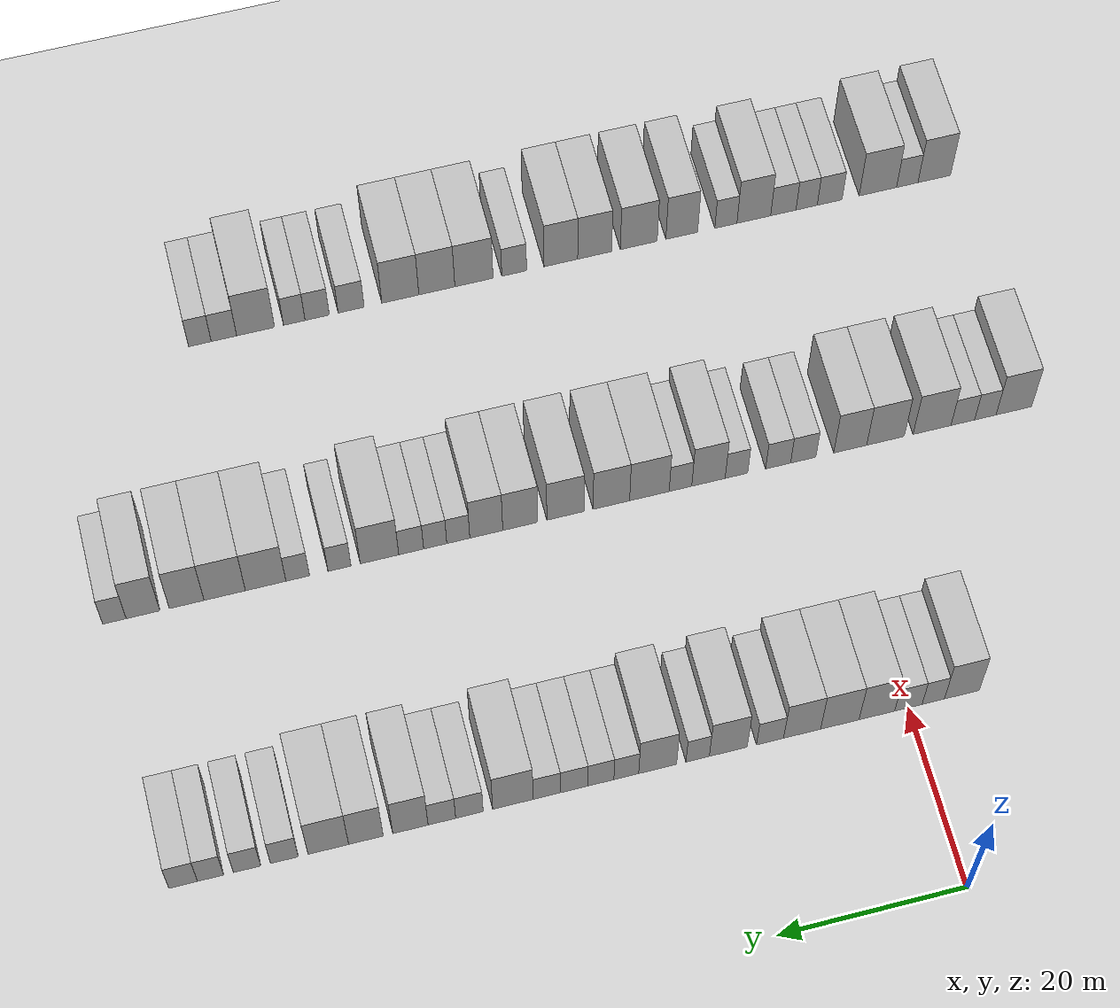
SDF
<sdf version="1.6">
 <world name="default">
  <include><name>ground_plane_1</name><uri>model://HANNAS_ground_plane</uri></include>
  <model name="building_111">
   <static>1</static>
   <pose>25.0000 -5.7930 0 0.000000 0.000000 0.000000</pose>
   <link name="link">
    <pose>0 0 4.50 0 0 0</pose>
    <collision name="collision"><geometry><box><size>10.0000 3.7998 9.0000</size></box></geometry></collision>
    <visual name="visual">
     <cast_shadows>0</cast_shadows>
     <geometry><box><size>10.0000 3.7998 9.0000</size></box></geometry>
     <material>
      <script>
       <uri>model://HANNAS_wall/materials/scripts</uri>
       <uri>model://HANNAS_wall/materials/textures</uri>
       <name>vrc/HANNAS_wall</name>
      </script>
     </material>
    </visual>
   </link>
  </model>
  <model name="building_112">
   <static>1</static>
   <pose>25.0000 -2.6859 0 0.000000 0.000000 0.000000</pose>
   <link name="link">
    <pose>0 0 3.00 0 0 0</pose>
    <collision name="collision"><geometry><box><size>10.0000 2.4144 6.0000</size></box></geometry></collision>
    <visual name="visual">
     <cast_shadows>0</cast_shadows>
     <geometry><box><size>10.0000 2.4144 6.0000</size></box></geometry>
     <material>
      <script>
       <uri>model://HANNAS_wall/materials/scripts</uri>
       <uri>model://HANNAS_wall/materials/textures</uri>
       <name>vrc/HANNAS_wall</name>
      </script>
     </material>
    </visual>
   </link>
  </model>
  <model name="building_113">
   <static>1</static>
   <pose>25.0000 0.0095 0 0.000000 0.000000 0.000000</pose>
   <link name="link">
    <pose>0 0 3.00 0 0 0</pose>
    <collision name="collision"><geometry><box><size>10.0000 2.9764 6.0000</size></box></geometry></collision>
    <visual name="visual">
     <cast_shadows>0</cast_shadows>
     <geometry><box><size>10.0000 2.9764 6.0000</size></box></geometry>
     <material>
      <script>
       <uri>model://HANNAS_wall/materials/scripts</uri>
       <uri>model://HANNAS_wall/materials/textures</uri>
       <name>vrc/HANNAS_wall</name>
      </script>
     </material>
    </visual>
   </link>
  </model>
  <model name="building_114">
   <static>1</static>
   <pose>25.0000 3.4234 0 0.000000 0.000000 0.000000</pose>
   <link name="link">
    <pose>0 0 4.50 0 0 0</pose>
    <collision name="collision"><geometry><box><size>10.0000 3.8512 9.0000</size></box></geometry></collision>
    <visual name="visual">
     <cast_shadows>0</cast_shadows>
     <geometry><box><size>10.0000 3.8512 9.0000</size></box></geometry>
     <material>
      <script>
       <uri>model://HANNAS_wall/materials/scripts</uri>
       <uri>model://HANNAS_wall/materials/textures</uri>
       <name>vrc/HANNAS_wall</name>
      </script>
     </material>
    </visual>
   </link>
  </model>
  <model name="building_115">
   <static>1</static>
   <pose>25.0000 7.4225 0 0.000000 0.000000 0.000000</pose>
   <link name="link">
    <pose>0 0 4.50 0 0 0</pose>
    <collision name="collision"><geometry><box><size>10.0000 4.1470 9.0000</size></box></geometry></collision>
    <visual name="visual">
     <cast_shadows>0</cast_shadows>
     <geometry><box><size>10.0000 4.1470 9.0000</size></box></geometry>
     <material>
      <script>
       <uri>model://HANNAS_wall/materials/scripts</uri>
       <uri>model://HANNAS_wall/materials/textures</uri>
       <name>vrc/HANNAS_wall</name>
      </script>
     </material>
    </visual>
   </link>
  </model>
  <model name="building_116">
   <static>1</static>
   <pose>25.0000 11.4840 0 0.000000 0.000000 0.000000</pose>
   <link name="link">
    <pose>0 0 4.50 0 0 0</pose>
    <collision name="collision"><geometry><box><size>10.0000 3.9761 9.0000</size></box></geometry></collision>
    <visual name="visual">
     <cast_shadows>0</cast_shadows>
     <geometry><box><size>10.0000 3.9761 9.0000</size></box></geometry>
     <material>
      <script>
       <uri>model://HANNAS_wall/materials/scripts</uri>
       <uri>model://HANNAS_wall/materials/textures</uri>
       <name>vrc/HANNAS_wall</name>
      </script>
     </material>
    </visual>
   </link>
  </model>
  <model name="building_117">
   <static>1</static>
   <pose>25.0000 14.9272 0 0.000000 0.000000 0.000000</pose>
   <link name="link">
    <pose>0 0 3.00 0 0 0</pose>
    <collision name="collision"><geometry><box><size>10.0000 2.9101 6.0000</size></box></geometry></collision>
    <visual name="visual">
     <cast_shadows>0</cast_shadows>
     <geometry><box><size>10.0000 2.9101 6.0000</size></box></geometry>
     <material>
      <script>
       <uri>model://HANNAS_wall/materials/scripts</uri>
       <uri>model://HANNAS_wall/materials/textures</uri>
       <name>vrc/HANNAS_wall</name>
      </script>
     </material>
    </visual>
   </link>
  </model>
  <model name="building_118">
   <static>1</static>
   <pose>25.0000 19.4033 0 0.000000 0.000000 0.000000</pose>
   <link name="link">
    <pose>0 0 4.50 0 0 0</pose>
    <collision name="collision"><geometry><box><size>10.0000 4.0421 9.0000</size></box></geometry></collision>
    <visual name="visual">
     <cast_shadows>0</cast_shadows>
     <geometry><box><size>10.0000 4.0421 9.0000</size></box></geometry>
     <material>
      <script>
       <uri>model://HANNAS_wall/materials/scripts</uri>
       <uri>model://HANNAS_wall/materials/textures</uri>
       <name>vrc/HANNAS_wall</name>
      </script>
     </material>
    </visual>
   </link>
  </model>
  <model name="building_119">
   <static>1</static>
   <pose>25.0000 22.6721 0 0.000000 0.000000 0.000000</pose>
   <link name="link">
    <pose>0 0 3.00 0 0 0</pose>
    <collision name="collision"><geometry><box><size>10.0000 2.4955 6.0000</size></box></geometry></collision>
    <visual name="visual">
     <cast_shadows>0</cast_shadows>
     <geometry><box><size>10.0000 2.4955 6.0000</size></box></geometry>
     <material>
      <script>
       <uri>model://HANNAS_wall/materials/scripts</uri>
       <uri>model://HANNAS_wall/materials/textures</uri>
       <name>vrc/HANNAS_wall</name>
      </script>
     </material>
    </visual>
   </link>
  </model>
  <model name="building_120">
   <static>1</static>
   <pose>25.0000 26.9314 0 0.000000 0.000000 0.000000</pose>
   <link name="link">
    <pose>0 0 4.50 0 0 0</pose>
    <collision name="collision"><geometry><box><size>10.0000 4.0230 9.0000</size></box></geometry></collision>
    <visual name="visual">
     <cast_shadows>0</cast_shadows>
     <geometry><box><size>10.0000 4.0230 9.0000</size></box></geometry>
     <material>
      <script>
       <uri>model://HANNAS_wall/materials/scripts</uri>
       <uri>model://HANNAS_wall/materials/textures</uri>
       <name>vrc/HANNAS_wall</name>
      </script>
     </material>
    </visual>
   </link>
  </model>
  <model name="building_121">
   <static>1</static>
   <pose>25.0000 30.2590 0 0.000000 0.000000 0.000000</pose>
   <link name="link">
    <pose>0 0 3.00 0 0 0</pose>
    <collision name="collision"><geometry><box><size>10.0000 2.6323 6.0000</size></box></geometry></collision>
    <visual name="visual">
     <cast_shadows>0</cast_shadows>
     <geometry><box><size>10.0000 2.6323 6.0000</size></box></geometry>
     <material>
      <script>
       <uri>model://HANNAS_wall/materials/scripts</uri>
       <uri>model://HANNAS_wall/materials/textures</uri>
       <name>vrc/HANNAS_wall</name>
      </script>
     </material>
    </visual>
   </link>
  </model>
  <model name="building_122">
   <static>1</static>
   <pose>25.0000 32.9532 0 0.000000 0.000000 0.000000</pose>
   <link name="link">
    <pose>0 0 3.00 0 0 0</pose>
    <collision name="collision"><geometry><box><size>10.0000 2.7561 6.0000</size></box></geometry></collision>
    <visual name="visual">
     <cast_shadows>0</cast_shadows>
     <geometry><box><size>10.0000 2.7561 6.0000</size></box></geometry>
     <material>
      <script>
       <uri>model://HANNAS_wall/materials/scripts</uri>
       <uri>model://HANNAS_wall/materials/textures</uri>
       <name>vrc/HANNAS_wall</name>
      </script>
     </material>
    </visual>
   </link>
  </model>
  <model name="building_123">
   <static>1</static>
   <pose>25.0000 35.7816 0 0.000000 0.000000 0.000000</pose>
   <link name="link">
    <pose>0 0 3.00 0 0 0</pose>
    <collision name="collision"><geometry><box><size>10.0000 2.9007 6.0000</size></box></geometry></collision>
    <visual name="visual">
     <cast_shadows>0</cast_shadows>
     <geometry><box><size>10.0000 2.9007 6.0000</size></box></geometry>
     <material>
      <script>
       <uri>model://HANNAS_wall/materials/scripts</uri>
       <uri>model://HANNAS_wall/materials/textures</uri>
       <name>vrc/HANNAS_wall</name>
      </script>
     </material>
    </visual>
   </link>
  </model>
  <model name="building_124">
   <static>1</static>
   <pose>25.0000 38.6720 0 0.000000 0.000000 0.000000</pose>
   <link name="link">
    <pose>0 0 3.00 0 0 0</pose>
    <collision name="collision"><geometry><box><size>10.0000 2.8801 6.0000</size></box></geometry></collision>
    <visual name="visual">
     <cast_shadows>0</cast_shadows>
     <geometry><box><size>10.0000 2.8801 6.0000</size></box></geometry>
     <material>
      <script>
       <uri>model://HANNAS_wall/materials/scripts</uri>
       <uri>model://HANNAS_wall/materials/textures</uri>
       <name>vrc/HANNAS_wall</name>
      </script>
     </material>
    </visual>
   </link>
  </model>
  <model name="building_125">
   <static>1</static>
   <pose>25.0000 42.2370 0 0.000000 0.000000 0.000000</pose>
   <link name="link">
    <pose>0 0 4.50 0 0 0</pose>
    <collision name="collision"><geometry><box><size>10.0000 4.2500 9.0000</size></box></geometry></collision>
    <visual name="visual">
     <cast_shadows>0</cast_shadows>
     <geometry><box><size>10.0000 4.2500 9.0000</size></box></geometry>
     <material>
      <script>
       <uri>model://HANNAS_wall/materials/scripts</uri>
       <uri>model://HANNAS_wall/materials/textures</uri>
       <name>vrc/HANNAS_wall</name>
      </script>
     </material>
    </visual>
   </link>
  </model>
  <model name="building_126">
   <static>1</static>
   <pose>25.0000 46.8047 0 0.000000 0.000000 0.000000</pose>
   <link name="link">
    <pose>0 0 3.00 0 0 0</pose>
    <collision name="collision"><geometry><box><size>10.0000 2.8853 6.0000</size></box></geometry></collision>
    <visual name="visual">
     <cast_shadows>0</cast_shadows>
     <geometry><box><size>10.0000 2.8853 6.0000</size></box></geometry>
     <material>
      <script>
       <uri>model://HANNAS_wall/materials/scripts</uri>
       <uri>model://HANNAS_wall/materials/textures</uri>
       <name>vrc/HANNAS_wall</name>
      </script>
     </material>
    </visual>
   </link>
  </model>
  <model name="building_127">
   <static>1</static>
   <pose>25.0000 49.6917 0 0.000000 0.000000 0.000000</pose>
   <link name="link">
    <pose>0 0 3.00 0 0 0</pose>
    <collision name="collision"><geometry><box><size>10.0000 2.8888 6.0000</size></box></geometry></collision>
    <visual name="visual">
     <cast_shadows>0</cast_shadows>
     <geometry><box><size>10.0000 2.8888 6.0000</size></box></geometry>
     <material>
      <script>
       <uri>model://HANNAS_wall/materials/scripts</uri>
       <uri>model://HANNAS_wall/materials/textures</uri>
       <name>vrc/HANNAS_wall</name>
      </script>
     </material>
    </visual>
   </link>
  </model>
  <model name="building_128">
   <static>1</static>
   <pose>25.0000 52.9776 0 0.000000 0.000000 0.000000</pose>
   <link name="link">
    <pose>0 0 4.50 0 0 0</pose>
    <collision name="collision"><geometry><box><size>10.0000 3.6829 9.0000</size></box></geometry></collision>
    <visual name="visual">
     <cast_shadows>0</cast_shadows>
     <geometry><box><size>10.0000 3.6829 9.0000</size></box></geometry>
     <material>
      <script>
       <uri>model://HANNAS_wall/materials/scripts</uri>
       <uri>model://HANNAS_wall/materials/textures</uri>
       <name>vrc/HANNAS_wall</name>
      </script>
     </material>
    </visual>
   </link>
  </model>
  <model name="building_129">
   <static>1</static>
   <pose>25.0000 57.6201 0 0.000000 0.000000 0.000000</pose>
   <link name="link">
    <pose>0 0 4.50 0 0 0</pose>
    <collision name="collision"><geometry><box><size>10.0000 3.6021 9.0000</size></box></geometry></collision>
    <visual name="visual">
     <cast_shadows>0</cast_shadows>
     <geometry><box><size>10.0000 3.6021 9.0000</size></box></geometry>
     <material>
      <script>
       <uri>model://HANNAS_wall/materials/scripts</uri>
       <uri>model://HANNAS_wall/materials/textures</uri>
       <name>vrc/HANNAS_wall</name>
      </script>
     </material>
    </visual>
   </link>
  </model>
  <model name="building_130">
   <static>1</static>
   <pose>25.0000 61.5335 0 0.000000 0.000000 0.000000</pose>
   <link name="link">
    <pose>0 0 4.50 0 0 0</pose>
    <collision name="collision"><geometry><box><size>10.0000 4.2247 9.0000</size></box></geometry></collision>
    <visual name="visual">
     <cast_shadows>0</cast_shadows>
     <geometry><box><size>10.0000 4.2247 9.0000</size></box></geometry>
     <material>
      <script>
       <uri>model://HANNAS_wall/materials/scripts</uri>
       <uri>model://HANNAS_wall/materials/textures</uri>
       <name>vrc/HANNAS_wall</name>
      </script>
     </material>
    </visual>
   </link>
  </model>
  <model name="building_131">
   <static>1</static>
   <pose>25.0000 66.0856 0 0.000000 0.000000 0.000000</pose>
   <link name="link">
    <pose>0 0 3.00 0 0 0</pose>
    <collision name="collision"><geometry><box><size>10.0000 2.8796 6.0000</size></box></geometry></collision>
    <visual name="visual">
     <cast_shadows>0</cast_shadows>
     <geometry><box><size>10.0000 2.8796 6.0000</size></box></geometry>
     <material>
      <script>
       <uri>model://HANNAS_wall/materials/scripts</uri>
       <uri>model://HANNAS_wall/materials/textures</uri>
       <name>vrc/HANNAS_wall</name>
      </script>
     </material>
    </visual>
   </link>
  </model>
  <model name="building_132">
   <static>1</static>
   <pose>25.0000 69.9453 0 0.000000 0.000000 0.000000</pose>
   <link name="link">
    <pose>0 0 3.00 0 0 0</pose>
    <collision name="collision"><geometry><box><size>10.0000 2.8400 6.0000</size></box></geometry></collision>
    <visual name="visual">
     <cast_shadows>0</cast_shadows>
     <geometry><box><size>10.0000 2.8400 6.0000</size></box></geometry>
     <material>
      <script>
       <uri>model://HANNAS_wall/materials/scripts</uri>
       <uri>model://HANNAS_wall/materials/textures</uri>
       <name>vrc/HANNAS_wall</name>
      </script>
     </material>
    </visual>
   </link>
  </model>
  <model name="building_133">
   <static>1</static>
   <pose>25.0000 73.7097 0 0.000000 0.000000 0.000000</pose>
   <link name="link">
    <pose>0 0 3.00 0 0 0</pose>
    <collision name="collision"><geometry><box><size>10.0000 2.6888 6.0000</size></box></geometry></collision>
    <visual name="visual">
     <cast_shadows>0</cast_shadows>
     <geometry><box><size>10.0000 2.6888 6.0000</size></box></geometry>
     <material>
      <script>
       <uri>model://HANNAS_wall/materials/scripts</uri>
       <uri>model://HANNAS_wall/materials/textures</uri>
       <name>vrc/HANNAS_wall</name>
      </script>
     </material>
    </visual>
   </link>
  </model>
  <model name="building_134">
   <static>1</static>
   <pose>25.0000 76.5297 0 0.000000 0.000000 0.000000</pose>
   <link name="link">
    <pose>0 0 3.00 0 0 0</pose>
    <collision name="collision"><geometry><box><size>10.0000 2.9512 6.0000</size></box></geometry></collision>
    <visual name="visual">
     <cast_shadows>0</cast_shadows>
     <geometry><box><size>10.0000 2.9512 6.0000</size></box></geometry>
     <material>
      <script>
       <uri>model://HANNAS_wall/materials/scripts</uri>
       <uri>model://HANNAS_wall/materials/textures</uri>
       <name>vrc/HANNAS_wall</name>
      </script>
     </material>
    </visual>
   </link>
  </model>
  <model name="building_346">
   <static>1</static>
   <pose>55.0000 -21.2539 0 0.000000 0.000000 0.000000</pose>
   <link name="link">
    <pose>0 0 4.50 0 0 0</pose>
    <collision name="collision"><geometry><box><size>10.0000 4.0521 9.0000</size></box></geometry></collision>
    <visual name="visual">
     <cast_shadows>0</cast_shadows>
     <geometry><box><size>10.0000 4.0521 9.0000</size></box></geometry>
     <material>
      <script>
       <uri>model://HANNAS_wall/materials/scripts</uri>
       <uri>model://HANNAS_wall/materials/textures</uri>
       <name>vrc/HANNAS_wall</name>
      </script>
     </material>
    </visual>
   </link>
  </model>
  <model name="building_347">
   <static>1</static>
   <pose>55.0000 -18.0122 0 0.000000 0.000000 0.000000</pose>
   <link name="link">
    <pose>0 0 3.00 0 0 0</pose>
    <collision name="collision"><geometry><box><size>10.0000 2.4312 6.0000</size></box></geometry></collision>
    <visual name="visual">
     <cast_shadows>0</cast_shadows>
     <geometry><box><size>10.0000 2.4312 6.0000</size></box></geometry>
     <material>
      <script>
       <uri>model://HANNAS_wall/materials/scripts</uri>
       <uri>model://HANNAS_wall/materials/textures</uri>
       <name>vrc/HANNAS_wall</name>
      </script>
     </material>
    </visual>
   </link>
  </model>
  <model name="building_348">
   <static>1</static>
   <pose>55.0000 -15.4551 0 0.000000 0.000000 0.000000</pose>
   <link name="link">
    <pose>0 0 3.00 0 0 0</pose>
    <collision name="collision"><geometry><box><size>10.0000 2.6830 6.0000</size></box></geometry></collision>
    <visual name="visual">
     <cast_shadows>0</cast_shadows>
     <geometry><box><size>10.0000 2.6830 6.0000</size></box></geometry>
     <material>
      <script>
       <uri>model://HANNAS_wall/materials/scripts</uri>
       <uri>model://HANNAS_wall/materials/textures</uri>
       <name>vrc/HANNAS_wall</name>
      </script>
     </material>
    </visual>
   </link>
  </model>
  <model name="building_349">
   <static>1</static>
   <pose>55.0000 -11.9667 0 0.000000 0.000000 0.000000</pose>
   <link name="link">
    <pose>0 0 4.50 0 0 0</pose>
    <collision name="collision"><geometry><box><size>10.0000 4.2938 9.0000</size></box></geometry></collision>
    <visual name="visual">
     <cast_shadows>0</cast_shadows>
     <geometry><box><size>10.0000 4.2938 9.0000</size></box></geometry>
     <material>
      <script>
       <uri>model://HANNAS_wall/materials/scripts</uri>
       <uri>model://HANNAS_wall/materials/textures</uri>
       <name>vrc/HANNAS_wall</name>
      </script>
     </material>
    </visual>
   </link>
  </model>
  <model name="building_350">
   <static>1</static>
   <pose>55.0000 -6.7031 0 0.000000 0.000000 0.000000</pose>
   <link name="link">
    <pose>0 0 4.50 0 0 0</pose>
    <collision name="collision"><geometry><box><size>10.0000 4.2333 9.0000</size></box></geometry></collision>
    <visual name="visual">
     <cast_shadows>0</cast_shadows>
     <geometry><box><size>10.0000 4.2333 9.0000</size></box></geometry>
     <material>
      <script>
       <uri>model://HANNAS_wall/materials/scripts</uri>
       <uri>model://HANNAS_wall/materials/textures</uri>
       <name>vrc/HANNAS_wall</name>
      </script>
     </material>
    </visual>
   </link>
  </model>
  <model name="building_351">
   <static>1</static>
   <pose>55.0000 -2.7287 0 0.000000 0.000000 0.000000</pose>
   <link name="link">
    <pose>0 0 4.50 0 0 0</pose>
    <collision name="collision"><geometry><box><size>10.0000 3.7155 9.0000</size></box></geometry></collision>
    <visual name="visual">
     <cast_shadows>0</cast_shadows>
     <geometry><box><size>10.0000 3.7155 9.0000</size></box></geometry>
     <material>
      <script>
       <uri>model://HANNAS_wall/materials/scripts</uri>
       <uri>model://HANNAS_wall/materials/textures</uri>
       <name>vrc/HANNAS_wall</name>
      </script>
     </material>
    </visual>
   </link>
  </model>
  <model name="building_352">
   <static>1</static>
   <pose>55.0000 2.5466 0 0.000000 0.000000 0.000000</pose>
   <link name="link">
    <pose>0 0 3.00 0 0 0</pose>
    <collision name="collision"><geometry><box><size>10.0000 2.8353 6.0000</size></box></geometry></collision>
    <visual name="visual">
     <cast_shadows>0</cast_shadows>
     <geometry><box><size>10.0000 2.8353 6.0000</size></box></geometry>
     <material>
      <script>
       <uri>model://HANNAS_wall/materials/scripts</uri>
       <uri>model://HANNAS_wall/materials/textures</uri>
       <name>vrc/HANNAS_wall</name>
      </script>
     </material>
    </visual>
   </link>
  </model>
  <model name="building_353">
   <static>1</static>
   <pose>55.0000 5.3639 0 0.000000 0.000000 0.000000</pose>
   <link name="link">
    <pose>0 0 3.00 0 0 0</pose>
    <collision name="collision"><geometry><box><size>10.0000 2.7992 6.0000</size></box></geometry></collision>
    <visual name="visual">
     <cast_shadows>0</cast_shadows>
     <geometry><box><size>10.0000 2.7992 6.0000</size></box></geometry>
     <material>
      <script>
       <uri>model://HANNAS_wall/materials/scripts</uri>
       <uri>model://HANNAS_wall/materials/textures</uri>
       <name>vrc/HANNAS_wall</name>
      </script>
     </material>
    </visual>
   </link>
  </model>
  <model name="building_354">
   <static>1</static>
   <pose>55.0000 10.0194 0 0.000000 0.000000 0.000000</pose>
   <link name="link">
    <pose>0 0 3.00 0 0 0</pose>
    <collision name="collision"><geometry><box><size>10.0000 2.5119 6.0000</size></box></geometry></collision>
    <visual name="visual">
     <cast_shadows>0</cast_shadows>
     <geometry><box><size>10.0000 2.5119 6.0000</size></box></geometry>
     <material>
      <script>
       <uri>model://HANNAS_wall/materials/scripts</uri>
       <uri>model://HANNAS_wall/materials/textures</uri>
       <name>vrc/HANNAS_wall</name>
      </script>
     </material>
    </visual>
   </link>
  </model>
  <model name="building_355">
   <static>1</static>
   <pose>55.0000 13.1345 0 0.000000 0.000000 0.000000</pose>
   <link name="link">
    <pose>0 0 4.50 0 0 0</pose>
    <collision name="collision"><geometry><box><size>10.0000 3.7183 9.0000</size></box></geometry></collision>
    <visual name="visual">
     <cast_shadows>0</cast_shadows>
     <geometry><box><size>10.0000 3.7183 9.0000</size></box></geometry>
     <material>
      <script>
       <uri>model://HANNAS_wall/materials/scripts</uri>
       <uri>model://HANNAS_wall/materials/textures</uri>
       <name>vrc/HANNAS_wall</name>
      </script>
     </material>
    </visual>
   </link>
  </model>
  <model name="building_356">
   <static>1</static>
   <pose>55.0000 16.2499 0 0.000000 0.000000 0.000000</pose>
   <link name="link">
    <pose>0 0 3.00 0 0 0</pose>
    <collision name="collision"><geometry><box><size>10.0000 2.5124 6.0000</size></box></geometry></collision>
    <visual name="visual">
     <cast_shadows>0</cast_shadows>
     <geometry><box><size>10.0000 2.5124 6.0000</size></box></geometry>
     <material>
      <script>
       <uri>model://HANNAS_wall/materials/scripts</uri>
       <uri>model://HANNAS_wall/materials/textures</uri>
       <name>vrc/HANNAS_wall</name>
      </script>
     </material>
    </visual>
   </link>
  </model>
  <model name="building_357">
   <static>1</static>
   <pose>55.0000 19.6986 0 0.000000 0.000000 0.000000</pose>
   <link name="link">
    <pose>0 0 4.50 0 0 0</pose>
    <collision name="collision"><geometry><box><size>10.0000 4.3850 9.0000</size></box></geometry></collision>
    <visual name="visual">
     <cast_shadows>0</cast_shadows>
     <geometry><box><size>10.0000 4.3850 9.0000</size></box></geometry>
     <material>
      <script>
       <uri>model://HANNAS_wall/materials/scripts</uri>
       <uri>model://HANNAS_wall/materials/textures</uri>
       <name>vrc/HANNAS_wall</name>
      </script>
     </material>
    </visual>
   </link>
  </model>
  <model name="building_358">
   <static>1</static>
   <pose>55.0000 23.9132 0 0.000000 0.000000 0.000000</pose>
   <link name="link">
    <pose>0 0 4.50 0 0 0</pose>
    <collision name="collision"><geometry><box><size>10.0000 4.0441 9.0000</size></box></geometry></collision>
    <visual name="visual">
     <cast_shadows>0</cast_shadows>
     <geometry><box><size>10.0000 4.0441 9.0000</size></box></geometry>
     <material>
      <script>
       <uri>model://HANNAS_wall/materials/scripts</uri>
       <uri>model://HANNAS_wall/materials/textures</uri>
       <name>vrc/HANNAS_wall</name>
      </script>
     </material>
    </visual>
   </link>
  </model>
  <model name="building_359">
   <static>1</static>
   <pose>55.0000 28.9796 0 0.000000 0.000000 0.000000</pose>
   <link name="link">
    <pose>0 0 4.50 0 0 0</pose>
    <collision name="collision"><geometry><box><size>10.0000 4.0888 9.0000</size></box></geometry></collision>
    <visual name="visual">
     <cast_shadows>0</cast_shadows>
     <geometry><box><size>10.0000 4.0888 9.0000</size></box></geometry>
     <material>
      <script>
       <uri>model://HANNAS_wall/materials/scripts</uri>
       <uri>model://HANNAS_wall/materials/textures</uri>
       <name>vrc/HANNAS_wall</name>
      </script>
     </material>
    </visual>
   </link>
  </model>
  <model name="building_360">
   <static>1</static>
   <pose>55.0000 33.9453 0 0.000000 0.000000 0.000000</pose>
   <link name="link">
    <pose>0 0 4.50 0 0 0</pose>
    <collision name="collision"><geometry><box><size>10.0000 3.8426 9.0000</size></box></geometry></collision>
    <visual name="visual">
     <cast_shadows>0</cast_shadows>
     <geometry><box><size>10.0000 3.8426 9.0000</size></box></geometry>
     <material>
      <script>
       <uri>model://HANNAS_wall/materials/scripts</uri>
       <uri>model://HANNAS_wall/materials/textures</uri>
       <name>vrc/HANNAS_wall</name>
      </script>
     </material>
    </visual>
   </link>
  </model>
  <model name="building_361">
   <static>1</static>
   <pose>55.0000 37.6709 0 0.000000 0.000000 0.000000</pose>
   <link name="link">
    <pose>0 0 4.50 0 0 0</pose>
    <collision name="collision"><geometry><box><size>10.0000 3.6086 9.0000</size></box></geometry></collision>
    <visual name="visual">
     <cast_shadows>0</cast_shadows>
     <geometry><box><size>10.0000 3.6086 9.0000</size></box></geometry>
     <material>
      <script>
       <uri>model://HANNAS_wall/materials/scripts</uri>
       <uri>model://HANNAS_wall/materials/textures</uri>
       <name>vrc/HANNAS_wall</name>
      </script>
     </material>
    </visual>
   </link>
  </model>
  <model name="building_362">
   <static>1</static>
   <pose>55.0000 40.7345 0 0.000000 0.000000 0.000000</pose>
   <link name="link">
    <pose>0 0 3.00 0 0 0</pose>
    <collision name="collision"><geometry><box><size>10.0000 2.5184 6.0000</size></box></geometry></collision>
    <visual name="visual">
     <cast_shadows>0</cast_shadows>
     <geometry><box><size>10.0000 2.5184 6.0000</size></box></geometry>
     <material>
      <script>
       <uri>model://HANNAS_wall/materials/scripts</uri>
       <uri>model://HANNAS_wall/materials/textures</uri>
       <name>vrc/HANNAS_wall</name>
      </script>
     </material>
    </visual>
   </link>
  </model>
  <model name="building_363">
   <static>1</static>
   <pose>55.0000 43.2559 0 0.000000 0.000000 0.000000</pose>
   <link name="link">
    <pose>0 0 3.00 0 0 0</pose>
    <collision name="collision"><geometry><box><size>10.0000 2.5244 6.0000</size></box></geometry></collision>
    <visual name="visual">
     <cast_shadows>0</cast_shadows>
     <geometry><box><size>10.0000 2.5244 6.0000</size></box></geometry>
     <material>
      <script>
       <uri>model://HANNAS_wall/materials/scripts</uri>
       <uri>model://HANNAS_wall/materials/textures</uri>
       <name>vrc/HANNAS_wall</name>
      </script>
     </material>
    </visual>
   </link>
  </model>
  <model name="building_364">
   <static>1</static>
   <pose>55.0000 45.8734 0 0.000000 0.000000 0.000000</pose>
   <link name="link">
    <pose>0 0 3.00 0 0 0</pose>
    <collision name="collision"><geometry><box><size>10.0000 2.7105 6.0000</size></box></geometry></collision>
    <visual name="visual">
     <cast_shadows>0</cast_shadows>
     <geometry><box><size>10.0000 2.7105 6.0000</size></box></geometry>
     <material>
      <script>
       <uri>model://HANNAS_wall/materials/scripts</uri>
       <uri>model://HANNAS_wall/materials/textures</uri>
       <name>vrc/HANNAS_wall</name>
      </script>
     </material>
    </visual>
   </link>
  </model>
  <model name="building_365">
   <static>1</static>
   <pose>55.0000 49.3207 0 0.000000 0.000000 0.000000</pose>
   <link name="link">
    <pose>0 0 4.50 0 0 0</pose>
    <collision name="collision"><geometry><box><size>10.0000 4.1843 9.0000</size></box></geometry></collision>
    <visual name="visual">
     <cast_shadows>0</cast_shadows>
     <geometry><box><size>10.0000 4.1843 9.0000</size></box></geometry>
     <material>
      <script>
       <uri>model://HANNAS_wall/materials/scripts</uri>
       <uri>model://HANNAS_wall/materials/textures</uri>
       <name>vrc/HANNAS_wall</name>
      </script>
     </material>
    </visual>
   </link>
  </model>
  <model name="building_366">
   <static>1</static>
   <pose>55.0000 53.6635 0 0.000000 0.000000 0.000000</pose>
   <link name="link">
    <pose>0 0 3.00 0 0 0</pose>
    <collision name="collision"><geometry><box><size>10.0000 2.5012 6.0000</size></box></geometry></collision>
    <visual name="visual">
     <cast_shadows>0</cast_shadows>
     <geometry><box><size>10.0000 2.5012 6.0000</size></box></geometry>
     <material>
      <script>
       <uri>model://HANNAS_wall/materials/scripts</uri>
       <uri>model://HANNAS_wall/materials/textures</uri>
       <name>vrc/HANNAS_wall</name>
      </script>
     </material>
    </visual>
   </link>
  </model>
  <model name="building_367">
   <static>1</static>
   <pose>55.0000 58.1878 0 0.000000 0.000000 0.000000</pose>
   <link name="link">
    <pose>0 0 3.00 0 0 0</pose>
    <collision name="collision"><geometry><box><size>10.0000 2.5474 6.0000</size></box></geometry></collision>
    <visual name="visual">
     <cast_shadows>0</cast_shadows>
     <geometry><box><size>10.0000 2.5474 6.0000</size></box></geometry>
     <material>
      <script>
       <uri>model://HANNAS_wall/materials/scripts</uri>
       <uri>model://HANNAS_wall/materials/textures</uri>
       <name>vrc/HANNAS_wall</name>
      </script>
     </material>
    </visual>
   </link>
  </model>
  <model name="building_368">
   <static>1</static>
   <pose>55.0000 61.6407 0 0.000000 0.000000 0.000000</pose>
   <link name="link">
    <pose>0 0 4.50 0 0 0</pose>
    <collision name="collision"><geometry><box><size>10.0000 4.3584 9.0000</size></box></geometry></collision>
    <visual name="visual">
     <cast_shadows>0</cast_shadows>
     <geometry><box><size>10.0000 4.3584 9.0000</size></box></geometry>
     <material>
      <script>
       <uri>model://HANNAS_wall/materials/scripts</uri>
       <uri>model://HANNAS_wall/materials/textures</uri>
       <name>vrc/HANNAS_wall</name>
      </script>
     </material>
    </visual>
   </link>
  </model>
  <model name="building_369">
   <static>1</static>
   <pose>55.0000 66.0492 0 0.000000 0.000000 0.000000</pose>
   <link name="link">
    <pose>0 0 4.50 0 0 0</pose>
    <collision name="collision"><geometry><box><size>10.0000 4.4586 9.0000</size></box></geometry></collision>
    <visual name="visual">
     <cast_shadows>0</cast_shadows>
     <geometry><box><size>10.0000 4.4586 9.0000</size></box></geometry>
     <material>
      <script>
       <uri>model://HANNAS_wall/materials/scripts</uri>
       <uri>model://HANNAS_wall/materials/textures</uri>
       <name>vrc/HANNAS_wall</name>
      </script>
     </material>
    </visual>
   </link>
  </model>
  <model name="building_370">
   <static>1</static>
   <pose>55.0000 70.1416 0 0.000000 0.000000 0.000000</pose>
   <link name="link">
    <pose>0 0 4.50 0 0 0</pose>
    <collision name="collision"><geometry><box><size>10.0000 3.7263 9.0000</size></box></geometry></collision>
    <visual name="visual">
     <cast_shadows>0</cast_shadows>
     <geometry><box><size>10.0000 3.7263 9.0000</size></box></geometry>
     <material>
      <script>
       <uri>model://HANNAS_wall/materials/scripts</uri>
       <uri>model://HANNAS_wall/materials/textures</uri>
       <name>vrc/HANNAS_wall</name>
      </script>
     </material>
    </visual>
   </link>
  </model>
  <model name="building_371">
   <static>1</static>
   <pose>55.0000 74.8085 0 0.000000 0.000000 0.000000</pose>
   <link name="link">
    <pose>0 0 4.50 0 0 0</pose>
    <collision name="collision"><geometry><box><size>10.0000 3.6076 9.0000</size></box></geometry></collision>
    <visual name="visual">
     <cast_shadows>0</cast_shadows>
     <geometry><box><size>10.0000 3.6076 9.0000</size></box></geometry>
     <material>
      <script>
       <uri>model://HANNAS_wall/materials/scripts</uri>
       <uri>model://HANNAS_wall/materials/textures</uri>
       <name>vrc/HANNAS_wall</name>
      </script>
     </material>
    </visual>
   </link>
  </model>
  <model name="building_372">
   <static>1</static>
   <pose>55.0000 77.8617 0 0.000000 0.000000 0.000000</pose>
   <link name="link">
    <pose>0 0 3.00 0 0 0</pose>
    <collision name="collision"><geometry><box><size>10.0000 2.4987 6.0000</size></box></geometry></collision>
    <visual name="visual">
     <cast_shadows>0</cast_shadows>
     <geometry><box><size>10.0000 2.4987 6.0000</size></box></geometry>
     <material>
      <script>
       <uri>model://HANNAS_wall/materials/scripts</uri>
       <uri>model://HANNAS_wall/materials/textures</uri>
       <name>vrc/HANNAS_wall</name>
      </script>
     </material>
    </visual>
   </link>
  </model>
  <model name="building_572">
   <static>1</static>
   <pose>85.0000 -21.6380 0 0.000000 0.000000 0.000000</pose>
   <link name="link">
    <pose>0 0 4.50 0 0 0</pose>
    <collision name="collision"><geometry><box><size>10.0000 3.8410 9.0000</size></box></geometry></collision>
    <visual name="visual">
     <cast_shadows>0</cast_shadows>
     <geometry><box><size>10.0000 3.8410 9.0000</size></box></geometry>
     <material>
      <script>
       <uri>model://HANNAS_wall/materials/scripts</uri>
       <uri>model://HANNAS_wall/materials/textures</uri>
       <name>vrc/HANNAS_wall</name>
      </script>
     </material>
    </visual>
   </link>
  </model>
  <model name="building_573">
   <static>1</static>
   <pose>85.0000 -18.4551 0 0.000000 0.000000 0.000000</pose>
   <link name="link">
    <pose>0 0 3.00 0 0 0</pose>
    <collision name="collision"><geometry><box><size>10.0000 2.5247 6.0000</size></box></geometry></collision>
    <visual name="visual">
     <cast_shadows>0</cast_shadows>
     <geometry><box><size>10.0000 2.5247 6.0000</size></box></geometry>
     <material>
      <script>
       <uri>model://HANNAS_wall/materials/scripts</uri>
       <uri>model://HANNAS_wall/materials/textures</uri>
       <name>vrc/HANNAS_wall</name>
      </script>
     </material>
    </visual>
   </link>
  </model>
  <model name="building_574">
   <static>1</static>
   <pose>85.0000 -14.9993 0 0.000000 0.000000 0.000000</pose>
   <link name="link">
    <pose>0 0 4.50 0 0 0</pose>
    <collision name="collision"><geometry><box><size>10.0000 4.3869 9.0000</size></box></geometry></collision>
    <visual name="visual">
     <cast_shadows>0</cast_shadows>
     <geometry><box><size>10.0000 4.3869 9.0000</size></box></geometry>
     <material>
      <script>
       <uri>model://HANNAS_wall/materials/scripts</uri>
       <uri>model://HANNAS_wall/materials/textures</uri>
       <name>vrc/HANNAS_wall</name>
      </script>
     </material>
    </visual>
   </link>
  </model>
  <model name="building_575">
   <static>1</static>
   <pose>85.0000 -9.3564 0 0.000000 0.000000 0.000000</pose>
   <link name="link">
    <pose>0 0 3.00 0 0 0</pose>
    <collision name="collision"><geometry><box><size>10.0000 2.8989 6.0000</size></box></geometry></collision>
    <visual name="visual">
     <cast_shadows>0</cast_shadows>
     <geometry><box><size>10.0000 2.8989 6.0000</size></box></geometry>
     <material>
      <script>
       <uri>model://HANNAS_wall/materials/scripts</uri>
       <uri>model://HANNAS_wall/materials/textures</uri>
       <name>vrc/HANNAS_wall</name>
      </script>
     </material>
    </visual>
   </link>
  </model>
  <model name="building_576">
   <static>1</static>
   <pose>85.0000 -6.6656 0 0.000000 0.000000 0.000000</pose>
   <link name="link">
    <pose>0 0 3.00 0 0 0</pose>
    <collision name="collision"><geometry><box><size>10.0000 2.4825 6.0000</size></box></geometry></collision>
    <visual name="visual">
     <cast_shadows>0</cast_shadows>
     <geometry><box><size>10.0000 2.4825 6.0000</size></box></geometry>
     <material>
      <script>
       <uri>model://HANNAS_wall/materials/scripts</uri>
       <uri>model://HANNAS_wall/materials/textures</uri>
       <name>vrc/HANNAS_wall</name>
      </script>
     </material>
    </visual>
   </link>
  </model>
  <model name="building_577">
   <static>1</static>
   <pose>85.0000 -3.9434 0 0.000000 0.000000 0.000000</pose>
   <link name="link">
    <pose>0 0 3.00 0 0 0</pose>
    <collision name="collision"><geometry><box><size>10.0000 2.9620 6.0000</size></box></geometry></collision>
    <visual name="visual">
     <cast_shadows>0</cast_shadows>
     <geometry><box><size>10.0000 2.9620 6.0000</size></box></geometry>
     <material>
      <script>
       <uri>model://HANNAS_wall/materials/scripts</uri>
       <uri>model://HANNAS_wall/materials/textures</uri>
       <name>vrc/HANNAS_wall</name>
      </script>
     </material>
    </visual>
   </link>
  </model>
  <model name="building_578">
   <static>1</static>
   <pose>85.0000 -0.5034 0 0.000000 0.000000 0.000000</pose>
   <link name="link">
    <pose>0 0 4.50 0 0 0</pose>
    <collision name="collision"><geometry><box><size>10.0000 3.9179 9.0000</size></box></geometry></collision>
    <visual name="visual">
     <cast_shadows>0</cast_shadows>
     <geometry><box><size>10.0000 3.9179 9.0000</size></box></geometry>
     <material>
      <script>
       <uri>model://HANNAS_wall/materials/scripts</uri>
       <uri>model://HANNAS_wall/materials/textures</uri>
       <name>vrc/HANNAS_wall</name>
      </script>
     </material>
    </visual>
   </link>
  </model>
  <model name="building_579">
   <static>1</static>
   <pose>85.0000 2.7374 0 0.000000 0.000000 0.000000</pose>
   <link name="link">
    <pose>0 0 3.00 0 0 0</pose>
    <collision name="collision"><geometry><box><size>10.0000 2.5637 6.0000</size></box></geometry></collision>
    <visual name="visual">
     <cast_shadows>0</cast_shadows>
     <geometry><box><size>10.0000 2.5637 6.0000</size></box></geometry>
     <material>
      <script>
       <uri>model://HANNAS_wall/materials/scripts</uri>
       <uri>model://HANNAS_wall/materials/textures</uri>
       <name>vrc/HANNAS_wall</name>
      </script>
     </material>
    </visual>
   </link>
  </model>
  <model name="building_580">
   <static>1</static>
   <pose>85.0000 7.8582 0 0.000000 0.000000 0.000000</pose>
   <link name="link">
    <pose>0 0 4.50 0 0 0</pose>
    <collision name="collision"><geometry><box><size>10.0000 3.6779 9.0000</size></box></geometry></collision>
    <visual name="visual">
     <cast_shadows>0</cast_shadows>
     <geometry><box><size>10.0000 3.6779 9.0000</size></box></geometry>
     <material>
      <script>
       <uri>model://HANNAS_wall/materials/scripts</uri>
       <uri>model://HANNAS_wall/materials/textures</uri>
       <name>vrc/HANNAS_wall</name>
      </script>
     </material>
    </visual>
   </link>
  </model>
  <model name="building_581">
   <static>1</static>
   <pose>85.0000 12.8234 0 0.000000 0.000000 0.000000</pose>
   <link name="link">
    <pose>0 0 4.50 0 0 0</pose>
    <collision name="collision"><geometry><box><size>10.0000 4.2525 9.0000</size></box></geometry></collision>
    <visual name="visual">
     <cast_shadows>0</cast_shadows>
     <geometry><box><size>10.0000 4.2525 9.0000</size></box></geometry>
     <material>
      <script>
       <uri>model://HANNAS_wall/materials/scripts</uri>
       <uri>model://HANNAS_wall/materials/textures</uri>
       <name>vrc/HANNAS_wall</name>
      </script>
     </material>
    </visual>
   </link>
  </model>
  <model name="building_582">
   <static>1</static>
   <pose>85.0000 17.9005 0 0.000000 0.000000 0.000000</pose>
   <link name="link">
    <pose>0 0 4.50 0 0 0</pose>
    <collision name="collision"><geometry><box><size>10.0000 3.9015 9.0000</size></box></geometry></collision>
    <visual name="visual">
     <cast_shadows>0</cast_shadows>
     <geometry><box><size>10.0000 3.9015 9.0000</size></box></geometry>
     <material>
      <script>
       <uri>model://HANNAS_wall/materials/scripts</uri>
       <uri>model://HANNAS_wall/materials/textures</uri>
       <name>vrc/HANNAS_wall</name>
      </script>
     </material>
    </visual>
   </link>
  </model>
  <model name="building_583">
   <static>1</static>
   <pose>85.0000 21.7796 0 0.000000 0.000000 0.000000</pose>
   <link name="link">
    <pose>0 0 4.50 0 0 0</pose>
    <collision name="collision"><geometry><box><size>10.0000 3.8568 9.0000</size></box></geometry></collision>
    <visual name="visual">
     <cast_shadows>0</cast_shadows>
     <geometry><box><size>10.0000 3.8568 9.0000</size></box></geometry>
     <material>
      <script>
       <uri>model://HANNAS_wall/materials/scripts</uri>
       <uri>model://HANNAS_wall/materials/textures</uri>
       <name>vrc/HANNAS_wall</name>
      </script>
     </material>
    </visual>
   </link>
  </model>
  <model name="building_584">
   <static>1</static>
   <pose>85.0000 27.1228 0 0.000000 0.000000 0.000000</pose>
   <link name="link">
    <pose>0 0 3.00 0 0 0</pose>
    <collision name="collision"><geometry><box><size>10.0000 2.8297 6.0000</size></box></geometry></collision>
    <visual name="visual">
     <cast_shadows>0</cast_shadows>
     <geometry><box><size>10.0000 2.8297 6.0000</size></box></geometry>
     <material>
      <script>
       <uri>model://HANNAS_wall/materials/scripts</uri>
       <uri>model://HANNAS_wall/materials/textures</uri>
       <name>vrc/HANNAS_wall</name>
      </script>
     </material>
    </visual>
   </link>
  </model>
  <model name="building_585">
   <static>1</static>
   <pose>85.0000 31.7122 0 0.000000 0.000000 0.000000</pose>
   <link name="link">
    <pose>0 0 4.50 0 0 0</pose>
    <collision name="collision"><geometry><box><size>10.0000 4.3490 9.0000</size></box></geometry></collision>
    <visual name="visual">
     <cast_shadows>0</cast_shadows>
     <geometry><box><size>10.0000 4.3490 9.0000</size></box></geometry>
     <material>
      <script>
       <uri>model://HANNAS_wall/materials/scripts</uri>
       <uri>model://HANNAS_wall/materials/textures</uri>
       <name>vrc/HANNAS_wall</name>
      </script>
     </material>
    </visual>
   </link>
  </model>
  <model name="building_586">
   <static>1</static>
   <pose>85.0000 35.9328 0 0.000000 0.000000 0.000000</pose>
   <link name="link">
    <pose>0 0 4.50 0 0 0</pose>
    <collision name="collision"><geometry><box><size>10.0000 4.0923 9.0000</size></box></geometry></collision>
    <visual name="visual">
     <cast_shadows>0</cast_shadows>
     <geometry><box><size>10.0000 4.0923 9.0000</size></box></geometry>
     <material>
      <script>
       <uri>model://HANNAS_wall/materials/scripts</uri>
       <uri>model://HANNAS_wall/materials/textures</uri>
       <name>vrc/HANNAS_wall</name>
      </script>
     </material>
    </visual>
   </link>
  </model>
  <model name="building_587">
   <static>1</static>
   <pose>85.0000 40.0793 0 0.000000 0.000000 0.000000</pose>
   <link name="link">
    <pose>0 0 4.50 0 0 0</pose>
    <collision name="collision"><geometry><box><size>10.0000 4.2006 9.0000</size></box></geometry></collision>
    <visual name="visual">
     <cast_shadows>0</cast_shadows>
     <geometry><box><size>10.0000 4.2006 9.0000</size></box></geometry>
     <material>
      <script>
       <uri>model://HANNAS_wall/materials/scripts</uri>
       <uri>model://HANNAS_wall/materials/textures</uri>
       <name>vrc/HANNAS_wall</name>
      </script>
     </material>
    </visual>
   </link>
  </model>
  <model name="building_588">
   <static>1</static>
   <pose>85.0000 45.6441 0 0.000000 0.000000 0.000000</pose>
   <link name="link">
    <pose>0 0 3.00 0 0 0</pose>
    <collision name="collision"><geometry><box><size>10.0000 2.9291 6.0000</size></box></geometry></collision>
    <visual name="visual">
     <cast_shadows>0</cast_shadows>
     <geometry><box><size>10.0000 2.9291 6.0000</size></box></geometry>
     <material>
      <script>
       <uri>model://HANNAS_wall/materials/scripts</uri>
       <uri>model://HANNAS_wall/materials/textures</uri>
       <name>vrc/HANNAS_wall</name>
      </script>
     </material>
    </visual>
   </link>
  </model>
  <model name="building_589">
   <static>1</static>
   <pose>85.0000 49.4776 0 0.000000 0.000000 0.000000</pose>
   <link name="link">
    <pose>0 0 3.00 0 0 0</pose>
    <collision name="collision"><geometry><box><size>10.0000 2.7379 6.0000</size></box></geometry></collision>
    <visual name="visual">
     <cast_shadows>0</cast_shadows>
     <geometry><box><size>10.0000 2.7379 6.0000</size></box></geometry>
     <material>
      <script>
       <uri>model://HANNAS_wall/materials/scripts</uri>
       <uri>model://HANNAS_wall/materials/textures</uri>
       <name>vrc/HANNAS_wall</name>
      </script>
     </material>
    </visual>
   </link>
  </model>
  <model name="building_590">
   <static>1</static>
   <pose>85.0000 52.0567 0 0.000000 0.000000 0.000000</pose>
   <link name="link">
    <pose>0 0 3.00 0 0 0</pose>
    <collision name="collision"><geometry><box><size>10.0000 2.4202 6.0000</size></box></geometry></collision>
    <visual name="visual">
     <cast_shadows>0</cast_shadows>
     <geometry><box><size>10.0000 2.4202 6.0000</size></box></geometry>
     <material>
      <script>
       <uri>model://HANNAS_wall/materials/scripts</uri>
       <uri>model://HANNAS_wall/materials/textures</uri>
       <name>vrc/HANNAS_wall</name>
      </script>
     </material>
    </visual>
   </link>
  </model>
  <model name="building_591">
   <static>1</static>
   <pose>85.0000 56.3932 0 0.000000 0.000000 0.000000</pose>
   <link name="link">
    <pose>0 0 4.50 0 0 0</pose>
    <collision name="collision"><geometry><box><size>10.0000 4.2529 9.0000</size></box></geometry></collision>
    <visual name="visual">
     <cast_shadows>0</cast_shadows>
     <geometry><box><size>10.0000 4.2529 9.0000</size></box></geometry>
     <material>
      <script>
       <uri>model://HANNAS_wall/materials/scripts</uri>
       <uri>model://HANNAS_wall/materials/textures</uri>
       <name>vrc/HANNAS_wall</name>
      </script>
     </material>
    </visual>
   </link>
  </model>
  <model name="building_592">
   <static>1</static>
   <pose>85.0000 59.9476 0 0.000000 0.000000 0.000000</pose>
   <link name="link">
    <pose>0 0 3.00 0 0 0</pose>
    <collision name="collision"><geometry><box><size>10.0000 2.8559 6.0000</size></box></geometry></collision>
    <visual name="visual">
     <cast_shadows>0</cast_shadows>
     <geometry><box><size>10.0000 2.8559 6.0000</size></box></geometry>
     <material>
      <script>
       <uri>model://HANNAS_wall/materials/scripts</uri>
       <uri>model://HANNAS_wall/materials/textures</uri>
       <name>vrc/HANNAS_wall</name>
      </script>
     </material>
    </visual>
   </link>
  </model>
  <model name="building_593">
   <static>1</static>
   <pose>85.0000 62.6376 0 0.000000 0.000000 0.000000</pose>
   <link name="link">
    <pose>0 0 3.00 0 0 0</pose>
    <collision name="collision"><geometry><box><size>10.0000 2.5242 6.0000</size></box></geometry></collision>
    <visual name="visual">
     <cast_shadows>0</cast_shadows>
     <geometry><box><size>10.0000 2.5242 6.0000</size></box></geometry>
     <material>
      <script>
       <uri>model://HANNAS_wall/materials/scripts</uri>
       <uri>model://HANNAS_wall/materials/textures</uri>
       <name>vrc/HANNAS_wall</name>
      </script>
     </material>
    </visual>
   </link>
  </model>
 </world>
</sdf>
